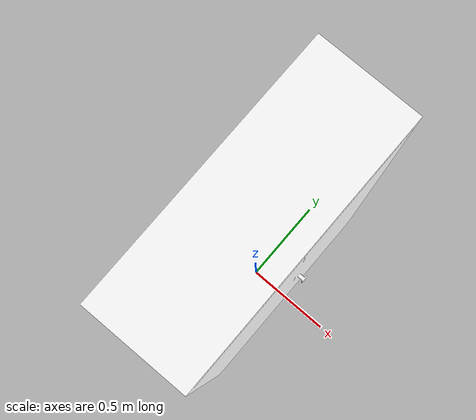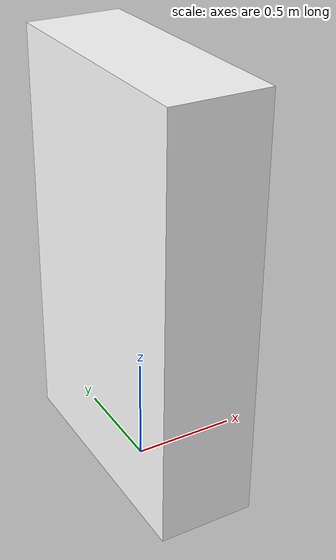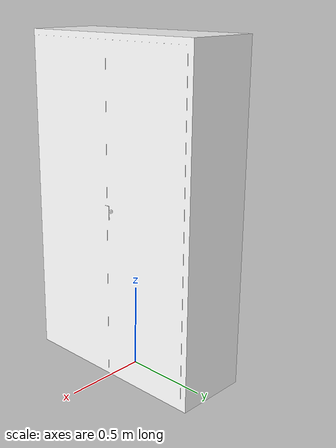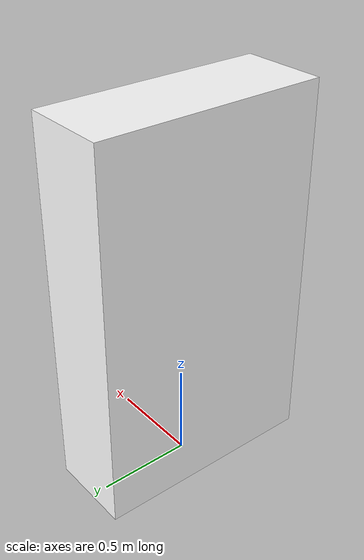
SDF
<?xml version='1.0'?>
<sdf version='1.6'>
  <model name='lar_shelf'>
    <link name='shelf'>
      <pose frame=''>0 0 1.01 0 -0 0</pose>
      <inertial>
        <inertia>
          <ixx>1</ixx>
          <ixy>0</ixy>
          <ixz>0</ixz>
          <iyy>1</iyy>
          <iyz>0</iyz>
          <izz>1</izz>
        </inertia>
        <mass>20</mass>
        <pose frame=''>0 0 0 0 -0 0</pose>
      </inertial>
      <self_collide>0</self_collide>
      <kinematic>0</kinematic>
      <gravity>1</gravity>
      <visual name='visual'>
        <geometry>
          <mesh>
            <uri>model://lar_shelf/meshes/lar_shelf.dae</uri>
          </mesh>
        </geometry>
        <pose frame=''>0 0 0 0 -0 0</pose>
        <cast_shadows>0</cast_shadows>
        <transparency>0</transparency>
        <material>
          <lighting>1</lighting>
          <ambient>1 1 1 1</ambient>
          <diffuse>1 1 1 1</diffuse>
          <specular>1 1 1 1</specular>
          <emissive>0 0 0 1</emissive>
          <shader type='vertex'>
            <normal_map>__default__</normal_map>
          </shader>
        </material>
      </visual>
      <collision name='collisions'>
        <laser_retro>0</laser_retro>
        <max_contacts>10</max_contacts>
        <pose frame=''>0 0 0 0 -0 0</pose>
        <geometry>
          <box>
            <size>0.454 1.2 1.98</size>
          </box>
        </geometry>
        <surface>
          <friction>
            <ode>
              <mu>1</mu>
              <mu2>1</mu2>
              <fdir1>0 0 0</fdir1>
              <slip1>0</slip1>
              <slip2>0</slip2>
            </ode>
            <torsional>
              <coefficient>1</coefficient>
              <patch_radius>0</patch_radius>
              <surface_radius>0</surface_radius>
              <use_patch_radius>1</use_patch_radius>
              <ode>
                <slip>0</slip>
              </ode>
            </torsional>
          </friction>
          <bounce>
            <restitution_coefficient>0</restitution_coefficient>
            <threshold>1e+06</threshold>
          </bounce>
          <contact>
            <collide_without_contact>0</collide_without_contact>
            <collide_without_contact_bitmask>1</collide_without_contact_bitmask>
            <collide_bitmask>1</collide_bitmask>
            <ode>
              <soft_cfm>0</soft_cfm>
              <soft_erp>0.2</soft_erp>
              <kp>1e+13</kp>
              <kd>1</kd>
              <max_vel>0.01</max_vel>
              <min_depth>0</min_depth>
            </ode>
            <bullet>
              <split_impulse>1</split_impulse>
              <split_impulse_penetration_threshold>-0.01</split_impulse_penetration_threshold>
              <soft_cfm>0</soft_cfm>
              <soft_erp>0.2</soft_erp>
              <kp>1e+13</kp>
              <kd>1</kd>
            </bullet>
          </contact>
        </surface>
      </collision>
    </link>
    <static>0</static>
    <allow_auto_disable>1</allow_auto_disable>
  </model>
</sdf>
